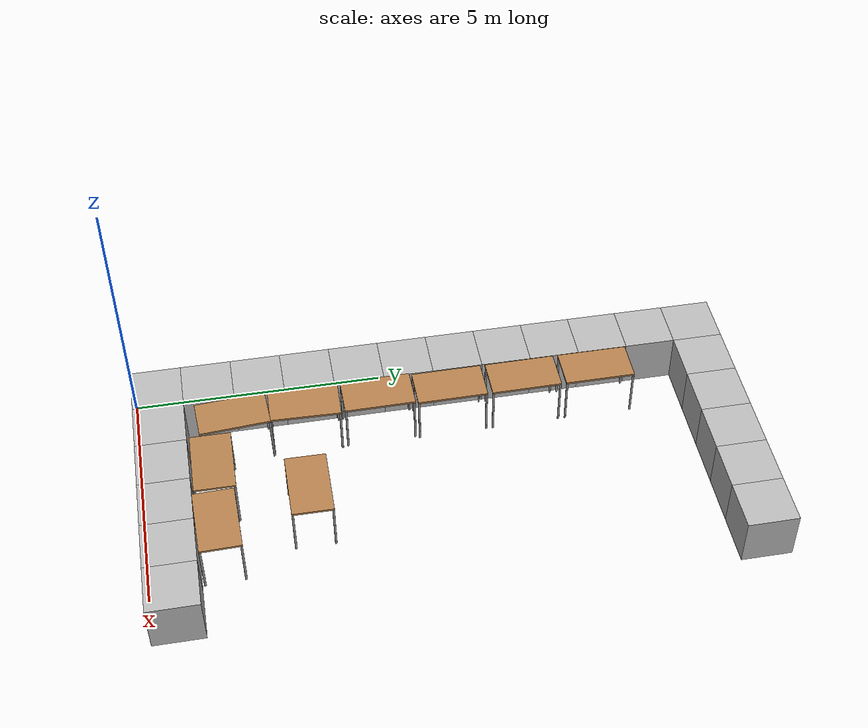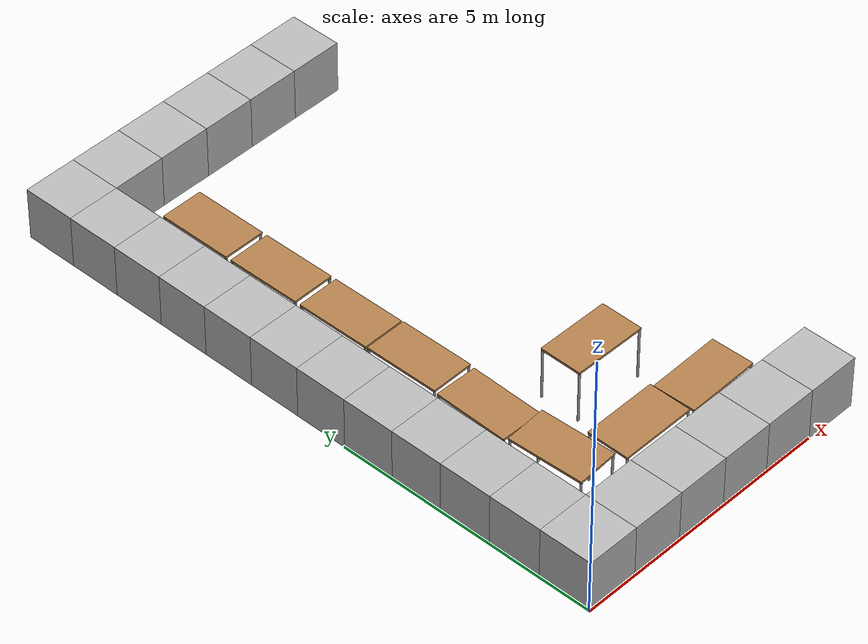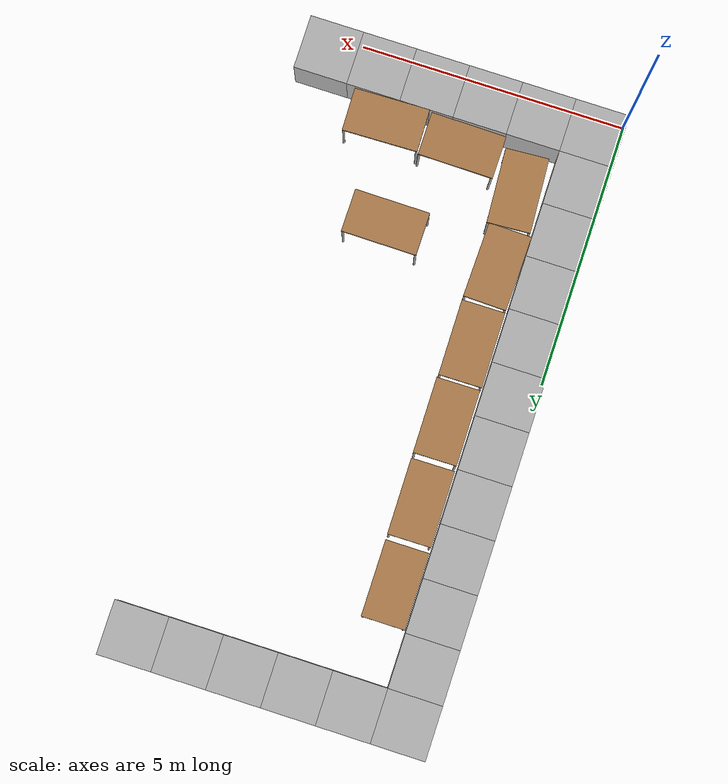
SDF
<sdf version="1.6">
 <world name="default">
  <model name="box_0_0">
   <pose>0.5 0.5 0.5 0 -0 0</pose>
   <static>1</static>
   <link name="link">
    <collision name="collision"><geometry><box><size>1 1 1</size></box></geometry></collision>
    <visual name="visual"><geometry><box><size>1 1 1</size></box></geometry></visual>
   </link>
  </model>
  <model name="box_0_1">
   <pose>0.5 1.5 0.5 0 -0 0</pose>
   <static>1</static>
   <link name="link">
    <collision name="collision"><geometry><box><size>1 1 1</size></box></geometry></collision>
    <visual name="visual"><geometry><box><size>1 1 1</size></box></geometry></visual>
   </link>
  </model>
  <model name="box_0_2">
   <pose>0.5 2.5 0.5 0 -0 0</pose>
   <static>1</static>
   <link name="link">
    <collision name="collision"><geometry><box><size>1 1 1</size></box></geometry></collision>
    <visual name="visual"><geometry><box><size>1 1 1</size></box></geometry></visual>
   </link>
  </model>
  <model name="box_0_3">
   <pose>0.5 3.5 0.5 0 -0 0</pose>
   <static>1</static>
   <link name="link">
    <collision name="collision"><geometry><box><size>1 1 1</size></box></geometry></collision>
    <visual name="visual"><geometry><box><size>1 1 1</size></box></geometry></visual>
   </link>
  </model>
  <model name="box_0_4">
   <pose>0.5 4.5 0.5 0 -0 0</pose>
   <static>1</static>
   <link name="link">
    <collision name="collision"><geometry><box><size>1 1 1</size></box></geometry></collision>
    <visual name="visual"><geometry><box><size>1 1 1</size></box></geometry></visual>
   </link>
  </model>
  <model name="box_0_5">
   <pose>0.5 5.5 0.5 0 -0 0</pose>
   <static>1</static>
   <link name="link">
    <collision name="collision"><geometry><box><size>1 1 1</size></box></geometry></collision>
    <visual name="visual"><geometry><box><size>1 1 1</size></box></geometry></visual>
   </link>
  </model>
  <model name="box_0_6">
   <pose>0.5 6.5 0.5 0 -0 0</pose>
   <static>1</static>
   <link name="link">
    <collision name="collision"><geometry><box><size>1 1 1</size></box></geometry></collision>
    <visual name="visual"><geometry><box><size>1 1 1</size></box></geometry></visual>
   </link>
  </model>
  <model name="box_0_7">
   <pose>0.5 7.5 0.5 0 -0 0</pose>
   <static>1</static>
   <link name="link">
    <collision name="collision"><geometry><box><size>1 1 1</size></box></geometry></collision>
    <visual name="visual"><geometry><box><size>1 1 1</size></box></geometry></visual>
   </link>
  </model>
  <model name="box_0_8">
   <pose>0.5 8.5 0.5 0 -0 0</pose>
   <static>1</static>
   <link name="link">
    <collision name="collision"><geometry><box><size>1 1 1</size></box></geometry></collision>
    <visual name="visual"><geometry><box><size>1 1 1</size></box></geometry></visual>
   </link>
  </model>
  <model name="box_0_9">
   <pose>0.5 9.5 0.5 0 -0 0</pose>
   <static>1</static>
   <link name="link">
    <collision name="collision"><geometry><box><size>1 1 1</size></box></geometry></collision>
    <visual name="visual"><geometry><box><size>1 1 1</size></box></geometry></visual>
   </link>
  </model>
  <model name="box_0_10">
   <pose>0.5 10.5 0.5 0 -0 0</pose>
   <static>1</static>
   <link name="link">
    <collision name="collision"><geometry><box><size>1 1 1</size></box></geometry></collision>
    <visual name="visual"><geometry><box><size>1 1 1</size></box></geometry></visual>
   </link>
  </model>
  <model name="box_0_11">
   <pose>0.5 11.5 0.5 0 -0 0</pose>
   <static>1</static>
   <link name="link">
    <collision name="collision"><geometry><box><size>1 1 1</size></box></geometry></collision>
    <visual name="visual"><geometry><box><size>1 1 1</size></box></geometry></visual>
   </link>
  </model>
  <model name="box_1_0">
   <pose>1.5 0.5 0.5 0 -0 0</pose>
   <static>1</static>
   <link name="link">
    <collision name="collision"><geometry><box><size>1 1 1</size></box></geometry></collision>
    <visual name="visual"><geometry><box><size>1 1 1</size></box></geometry></visual>
   </link>
  </model>
  <model name="box_1_11">
   <pose>1.5 11.5 0.5 0 -0 0</pose>
   <static>1</static>
   <link name="link">
    <collision name="collision"><geometry><box><size>1 1 1</size></box></geometry></collision>
    <visual name="visual"><geometry><box><size>1 1 1</size></box></geometry></visual>
   </link>
  </model>
  <model name="box_2_0">
   <pose>2.5 0.5 0.5 0 -0 0</pose>
   <static>1</static>
   <link name="link">
    <collision name="collision"><geometry><box><size>1 1 1</size></box></geometry></collision>
    <visual name="visual"><geometry><box><size>1 1 1</size></box></geometry></visual>
   </link>
  </model>
  <model name="box_2_11">
   <pose>2.5 11.5 0.5 0 -0 0</pose>
   <static>1</static>
   <link name="link">
    <collision name="collision"><geometry><box><size>1 1 1</size></box></geometry></collision>
    <visual name="visual"><geometry><box><size>1 1 1</size></box></geometry></visual>
   </link>
  </model>
  <model name="box_3_0">
   <pose>3.5 0.5 0.5 0 -0 0</pose>
   <static>1</static>
   <link name="link">
    <collision name="collision"><geometry><box><size>1 1 1</size></box></geometry></collision>
    <visual name="visual"><geometry><box><size>1 1 1</size></box></geometry></visual>
   </link>
  </model>
  <model name="box_3_11">
   <pose>3.5 11.5 0.5 0 -0 0</pose>
   <static>1</static>
   <link name="link">
    <collision name="collision"><geometry><box><size>1 1 1</size></box></geometry></collision>
    <visual name="visual"><geometry><box><size>1 1 1</size></box></geometry></visual>
   </link>
  </model>
  <model name="box_4_0">
   <pose>4.5 0.5 0.5 0 -0 0</pose>
   <static>1</static>
   <link name="link">
    <collision name="collision"><geometry><box><size>1 1 1</size></box></geometry></collision>
    <visual name="visual"><geometry><box><size>1 1 1</size></box></geometry></visual>
   </link>
  </model>
  <model name="box_4_11">
   <pose>4.5 11.5 0.5 0 -0 0</pose>
   <static>1</static>
   <link name="link">
    <collision name="collision"><geometry><box><size>1 1 1</size></box></geometry></collision>
    <visual name="visual"><geometry><box><size>1 1 1</size></box></geometry></visual>
   </link>
  </model>
  <model name="box_5_0">
   <pose>5.5 0.5 0.5 0 -0 0</pose>
   <static>1</static>
   <link name="link">
    <collision name="collision"><geometry><box><size>1 1 1</size></box></geometry></collision>
    <visual name="visual"><geometry><box><size>1 1 1</size></box></geometry></visual>
   </link>
  </model>
  <model name="box_5_11">
   <pose>5.5 11.5 0.5 0 -0 0</pose>
   <static>1</static>
   <link name="link">
    <collision name="collision"><geometry><box><size>1 1 1</size></box></geometry></collision>
    <visual name="visual"><geometry><box><size>1 1 1</size></box></geometry></visual>
   </link>
  </model>
  <model name="table_0_clone_clone_1">
   <static>0</static>
   <link name="link">
    <collision name="surface">
     <pose>0 0 1 0 -0 0</pose>
     <geometry><box><size>1.5 0.8 0.03</size></box></geometry>
     <surface><friction><ode><mu>0.6</mu><mu2>0.6</mu2></ode></friction></surface>
    </collision>
    <visual name="visual1">
     <pose>0 0 1 0 -0 0</pose>
     <geometry><box><size>1.4 0.8 0.04</size></box></geometry>
     <material>
      <script><uri>file://media/materials/scripts/gazebo.material</uri><name>Gazebo/Wood</name></script>
     </material>
    </visual>
    <collision name="front_left_leg">
     <pose>0.68 0.38 0.5 0 -0 0</pose>
     <geometry><cylinder><radius>0.02</radius><length>1</length></cylinder></geometry>
    </collision>
    <visual name="front_left_leg">
     <pose>0.68 0.38 0.5 0 -0 0</pose>
     <geometry><cylinder><radius>0.02</radius><length>1</length></cylinder></geometry>
     <material>
      <script><uri>file://media/materials/scripts/gazebo.material</uri><name>Gazebo/Grey</name></script>
     </material>
    </visual>
    <collision name="front_right_leg">
     <pose>0.68 -0.38 0.5 0 -0 0</pose>
     <geometry><cylinder><radius>0.02</radius><length>1</length></cylinder></geometry>
    </collision>
    <visual name="front_right_leg">
     <pose>0.68 -0.38 0.5 0 -0 0</pose>
     <geometry><cylinder><radius>0.02</radius><length>1</length></cylinder></geometry>
     <material>
      <script><uri>file://media/materials/scripts/gazebo.material</uri><name>Gazebo/Grey</name></script>
     </material>
    </visual>
    <collision name="back_right_leg">
     <pose>-0.68 -0.38 0.5 0 -0 0</pose>
     <geometry><cylinder><radius>0.02</radius><length>1</length></cylinder></geometry>
    </collision>
    <visual name="back_right_leg">
     <pose>-0.68 -0.38 0.5 0 -0 0</pose>
     <geometry><cylinder><radius>0.02</radius><length>1</length></cylinder></geometry>
     <material>
      <script><uri>file://media/materials/scripts/gazebo.material</uri><name>Gazebo/Grey</name></script>
     </material>
    </visual>
    <collision name="back_left_leg">
     <pose>-0.68 0.38 0.5 0 -0 0</pose>
     <geometry><cylinder><radius>0.02</radius><length>1</length></cylinder></geometry>
    </collision>
    <visual name="back_left_leg">
     <pose>-0.68 0.38 0.5 0 -0 0</pose>
     <geometry><cylinder><radius>0.02</radius><length>1</length></cylinder></geometry>
     <material>
      <script><uri>file://media/materials/scripts/gazebo.material</uri><name>Gazebo/Grey</name></script>
     </material>
    </visual>
    <inertial>
     <inertia><ixx>1</ixx><ixy>0</ixy><ixz>0</ixz><iyy>1</iyy><iyz>0</iyz><izz>1</izz></inertia>
     <mass>1</mass>
    </inertial>
   </link>
   <pose>1.49017 1.94716 0.015802 0.00183 0.021585 -1.51207</pose>
  </model>
  <model name="table_0_clone_clone_2">
   <static>0</static>
   <link name="link">
    <collision name="surface">
     <pose>0 0 1 0 -0 0</pose>
     <geometry><box><size>1.5 0.8 0.03</size></box></geometry>
     <surface><friction><ode><mu>0.6</mu><mu2>0.6</mu2></ode></friction></surface>
    </collision>
    <visual name="visual1">
     <pose>0 0 1 0 -0 0</pose>
     <geometry><box><size>1.4 0.8 0.04</size></box></geometry>
     <material>
      <script><uri>file://media/materials/scripts/gazebo.material</uri><name>Gazebo/Wood</name></script>
     </material>
    </visual>
    <collision name="front_left_leg">
     <pose>0.68 0.38 0.5 0 -0 0</pose>
     <geometry><cylinder><radius>0.02</radius><length>1</length></cylinder></geometry>
    </collision>
    <visual name="front_left_leg">
     <pose>0.68 0.38 0.5 0 -0 0</pose>
     <geometry><cylinder><radius>0.02</radius><length>1</length></cylinder></geometry>
     <material>
      <script><uri>file://media/materials/scripts/gazebo.material</uri><name>Gazebo/Grey</name></script>
     </material>
    </visual>
    <collision name="front_right_leg">
     <pose>0.68 -0.38 0.5 0 -0 0</pose>
     <geometry><cylinder><radius>0.02</radius><length>1</length></cylinder></geometry>
    </collision>
    <visual name="front_right_leg">
     <pose>0.68 -0.38 0.5 0 -0 0</pose>
     <geometry><cylinder><radius>0.02</radius><length>1</length></cylinder></geometry>
     <material>
      <script><uri>file://media/materials/scripts/gazebo.material</uri><name>Gazebo/Grey</name></script>
     </material>
    </visual>
    <collision name="back_right_leg">
     <pose>-0.68 -0.38 0.5 0 -0 0</pose>
     <geometry><cylinder><radius>0.02</radius><length>1</length></cylinder></geometry>
    </collision>
    <visual name="back_right_leg">
     <pose>-0.68 -0.38 0.5 0 -0 0</pose>
     <geometry><cylinder><radius>0.02</radius><length>1</length></cylinder></geometry>
     <material>
      <script><uri>file://media/materials/scripts/gazebo.material</uri><name>Gazebo/Grey</name></script>
     </material>
    </visual>
    <collision name="back_left_leg">
     <pose>-0.68 0.38 0.5 0 -0 0</pose>
     <geometry><cylinder><radius>0.02</radius><length>1</length></cylinder></geometry>
    </collision>
    <visual name="back_left_leg">
     <pose>-0.68 0.38 0.5 0 -0 0</pose>
     <geometry><cylinder><radius>0.02</radius><length>1</length></cylinder></geometry>
     <material>
      <script><uri>file://media/materials/scripts/gazebo.material</uri><name>Gazebo/Grey</name></script>
     </material>
    </visual>
    <inertial>
     <inertia><ixx>1</ixx><ixy>0</ixy><ixz>0</ixz><iyy>1</iyy><iyz>0</iyz><izz>1</izz></inertia>
     <mass>1</mass>
    </inertial>
   </link>
   <pose>1.42344 3.34358 0 0 0 -1.59789</pose>
  </model>
  <model name="table_0_clone_clone_2_clone">
   <static>0</static>
   <link name="link">
    <collision name="surface">
     <pose>0 0 1 0 -0 0</pose>
     <geometry><box><size>1.5 0.8 0.03</size></box></geometry>
     <surface><friction><ode><mu>0.6</mu><mu2>0.6</mu2></ode></friction></surface>
    </collision>
    <visual name="visual1">
     <pose>0 0 1 0 -0 0</pose>
     <geometry><box><size>1.4 0.8 0.04</size></box></geometry>
     <material>
      <script><uri>file://media/materials/scripts/gazebo.material</uri><name>Gazebo/Wood</name></script>
     </material>
    </visual>
    <collision name="front_left_leg">
     <pose>0.68 0.38 0.5 0 -0 0</pose>
     <geometry><cylinder><radius>0.02</radius><length>1</length></cylinder></geometry>
    </collision>
    <visual name="front_left_leg">
     <pose>0.68 0.38 0.5 0 -0 0</pose>
     <geometry><cylinder><radius>0.02</radius><length>1</length></cylinder></geometry>
     <material>
      <script><uri>file://media/materials/scripts/gazebo.material</uri><name>Gazebo/Grey</name></script>
     </material>
    </visual>
    <collision name="front_right_leg">
     <pose>0.68 -0.38 0.5 0 -0 0</pose>
     <geometry><cylinder><radius>0.02</radius><length>1</length></cylinder></geometry>
    </collision>
    <visual name="front_right_leg">
     <pose>0.68 -0.38 0.5 0 -0 0</pose>
     <geometry><cylinder><radius>0.02</radius><length>1</length></cylinder></geometry>
     <material>
      <script><uri>file://media/materials/scripts/gazebo.material</uri><name>Gazebo/Grey</name></script>
     </material>
    </visual>
    <collision name="back_right_leg">
     <pose>-0.68 -0.38 0.5 0 -0 0</pose>
     <geometry><cylinder><radius>0.02</radius><length>1</length></cylinder></geometry>
    </collision>
    <visual name="back_right_leg">
     <pose>-0.68 -0.38 0.5 0 -0 0</pose>
     <geometry><cylinder><radius>0.02</radius><length>1</length></cylinder></geometry>
     <material>
      <script><uri>file://media/materials/scripts/gazebo.material</uri><name>Gazebo/Grey</name></script>
     </material>
    </visual>
    <collision name="back_left_leg">
     <pose>-0.68 0.38 0.5 0 -0 0</pose>
     <geometry><cylinder><radius>0.02</radius><length>1</length></cylinder></geometry>
    </collision>
    <visual name="back_left_leg">
     <pose>-0.68 0.38 0.5 0 -0 0</pose>
     <geometry><cylinder><radius>0.02</radius><length>1</length></cylinder></geometry>
     <material>
      <script><uri>file://media/materials/scripts/gazebo.material</uri><name>Gazebo/Grey</name></script>
     </material>
    </visual>
    <inertial>
     <inertia><ixx>1</ixx><ixy>0</ixy><ixz>0</ixz><iyy>1</iyy><iyz>0</iyz><izz>1</izz></inertia>
     <mass>1</mass>
    </inertial>
   </link>
   <pose>1.43814 4.80631 0.029991 -5e-06 3e-06 -1.56369</pose>
  </model>
  <model name="table_0_clone_clone_2_clone_0">
   <static>0</static>
   <link name="link">
    <collision name="surface">
     <pose>0 0 1 0 -0 0</pose>
     <geometry><box><size>1.5 0.8 0.03</size></box></geometry>
     <surface><friction><ode><mu>0.6</mu><mu2>0.6</mu2></ode></friction></surface>
    </collision>
    <visual name="visual1">
     <pose>0 0 1 0 -0 0</pose>
     <geometry><box><size>1.4 0.8 0.04</size></box></geometry>
     <material>
      <script><uri>file://media/materials/scripts/gazebo.material</uri><name>Gazebo/Wood</name></script>
     </material>
    </visual>
    <collision name="front_left_leg">
     <pose>0.68 0.38 0.5 0 -0 0</pose>
     <geometry><cylinder><radius>0.02</radius><length>1</length></cylinder></geometry>
    </collision>
    <visual name="front_left_leg">
     <pose>0.68 0.38 0.5 0 -0 0</pose>
     <geometry><cylinder><radius>0.02</radius><length>1</length></cylinder></geometry>
     <material>
      <script><uri>file://media/materials/scripts/gazebo.material</uri><name>Gazebo/Grey</name></script>
     </material>
    </visual>
    <collision name="front_right_leg">
     <pose>0.68 -0.38 0.5 0 -0 0</pose>
     <geometry><cylinder><radius>0.02</radius><length>1</length></cylinder></geometry>
    </collision>
    <visual name="front_right_leg">
     <pose>0.68 -0.38 0.5 0 -0 0</pose>
     <geometry><cylinder><radius>0.02</radius><length>1</length></cylinder></geometry>
     <material>
      <script><uri>file://media/materials/scripts/gazebo.material</uri><name>Gazebo/Grey</name></script>
     </material>
    </visual>
    <collision name="back_right_leg">
     <pose>-0.68 -0.38 0.5 0 -0 0</pose>
     <geometry><cylinder><radius>0.02</radius><length>1</length></cylinder></geometry>
    </collision>
    <visual name="back_right_leg">
     <pose>-0.68 -0.38 0.5 0 -0 0</pose>
     <geometry><cylinder><radius>0.02</radius><length>1</length></cylinder></geometry>
     <material>
      <script><uri>file://media/materials/scripts/gazebo.material</uri><name>Gazebo/Grey</name></script>
     </material>
    </visual>
    <collision name="back_left_leg">
     <pose>-0.68 0.38 0.5 0 -0 0</pose>
     <geometry><cylinder><radius>0.02</radius><length>1</length></cylinder></geometry>
    </collision>
    <visual name="back_left_leg">
     <pose>-0.68 0.38 0.5 0 -0 0</pose>
     <geometry><cylinder><radius>0.02</radius><length>1</length></cylinder></geometry>
     <material>
      <script><uri>file://media/materials/scripts/gazebo.material</uri><name>Gazebo/Grey</name></script>
     </material>
    </visual>
    <inertial>
     <inertia><ixx>1</ixx><ixy>0</ixy><ixz>0</ixz><iyy>1</iyy><iyz>0</iyz><izz>1</izz></inertia>
     <mass>1</mass>
    </inertial>
   </link>
   <pose>1.44262 6.25638 -3e-06 0 4e-06 -1.56367</pose>
  </model>
  <model name="table_0_clone_clone_2_clone_1">
   <static>0</static>
   <link name="link">
    <collision name="surface">
     <pose>0 0 1 0 -0 0</pose>
     <geometry><box><size>1.5 0.8 0.03</size></box></geometry>
     <surface><friction><ode><mu>0.6</mu><mu2>0.6</mu2></ode></friction></surface>
    </collision>
    <visual name="visual1">
     <pose>0 0 1 0 -0 0</pose>
     <geometry><box><size>1.4 0.8 0.04</size></box></geometry>
     <material>
      <script><uri>file://media/materials/scripts/gazebo.material</uri><name>Gazebo/Wood</name></script>
     </material>
    </visual>
    <collision name="front_left_leg">
     <pose>0.68 0.38 0.5 0 -0 0</pose>
     <geometry><cylinder><radius>0.02</radius><length>1</length></cylinder></geometry>
    </collision>
    <visual name="front_left_leg">
     <pose>0.68 0.38 0.5 0 -0 0</pose>
     <geometry><cylinder><radius>0.02</radius><length>1</length></cylinder></geometry>
     <material>
      <script><uri>file://media/materials/scripts/gazebo.material</uri><name>Gazebo/Grey</name></script>
     </material>
    </visual>
    <collision name="front_right_leg">
     <pose>0.68 -0.38 0.5 0 -0 0</pose>
     <geometry><cylinder><radius>0.02</radius><length>1</length></cylinder></geometry>
    </collision>
    <visual name="front_right_leg">
     <pose>0.68 -0.38 0.5 0 -0 0</pose>
     <geometry><cylinder><radius>0.02</radius><length>1</length></cylinder></geometry>
     <material>
      <script><uri>file://media/materials/scripts/gazebo.material</uri><name>Gazebo/Grey</name></script>
     </material>
    </visual>
    <collision name="back_right_leg">
     <pose>-0.68 -0.38 0.5 0 -0 0</pose>
     <geometry><cylinder><radius>0.02</radius><length>1</length></cylinder></geometry>
    </collision>
    <visual name="back_right_leg">
     <pose>-0.68 -0.38 0.5 0 -0 0</pose>
     <geometry><cylinder><radius>0.02</radius><length>1</length></cylinder></geometry>
     <material>
      <script><uri>file://media/materials/scripts/gazebo.material</uri><name>Gazebo/Grey</name></script>
     </material>
    </visual>
    <collision name="back_left_leg">
     <pose>-0.68 0.38 0.5 0 -0 0</pose>
     <geometry><cylinder><radius>0.02</radius><length>1</length></cylinder></geometry>
    </collision>
    <visual name="back_left_leg">
     <pose>-0.68 0.38 0.5 0 -0 0</pose>
     <geometry><cylinder><radius>0.02</radius><length>1</length></cylinder></geometry>
     <material>
      <script><uri>file://media/materials/scripts/gazebo.material</uri><name>Gazebo/Grey</name></script>
     </material>
    </visual>
    <inertial>
     <inertia><ixx>1</ixx><ixy>0</ixy><ixz>0</ixz><iyy>1</iyy><iyz>0</iyz><izz>1</izz></inertia>
     <mass>1</mass>
    </inertial>
   </link>
   <pose>1.43369 7.75636 -8e-06 -2e-06 -1e-06 -1.56367</pose>
  </model>
  <model name="table_0_clone_clone_2_clone_1_clone">
   <static>0</static>
   <link name="link">
    <collision name="surface">
     <pose>0 0 1 0 -0 0</pose>
     <geometry><box><size>1.5 0.8 0.03</size></box></geometry>
     <surface><friction><ode><mu>0.6</mu><mu2>0.6</mu2></ode></friction></surface>
    </collision>
    <visual name="visual1">
     <pose>0 0 1 0 -0 0</pose>
     <geometry><box><size>1.4 0.8 0.04</size></box></geometry>
     <material>
      <script><uri>file://media/materials/scripts/gazebo.material</uri><name>Gazebo/Wood</name></script>
     </material>
    </visual>
    <collision name="front_left_leg">
     <pose>0.68 0.38 0.5 0 -0 0</pose>
     <geometry><cylinder><radius>0.02</radius><length>1</length></cylinder></geometry>
    </collision>
    <visual name="front_left_leg">
     <pose>0.68 0.38 0.5 0 -0 0</pose>
     <geometry><cylinder><radius>0.02</radius><length>1</length></cylinder></geometry>
     <material>
      <script><uri>file://media/materials/scripts/gazebo.material</uri><name>Gazebo/Grey</name></script>
     </material>
    </visual>
    <collision name="front_right_leg">
     <pose>0.68 -0.38 0.5 0 -0 0</pose>
     <geometry><cylinder><radius>0.02</radius><length>1</length></cylinder></geometry>
    </collision>
    <visual name="front_right_leg">
     <pose>0.68 -0.38 0.5 0 -0 0</pose>
     <geometry><cylinder><radius>0.02</radius><length>1</length></cylinder></geometry>
     <material>
      <script><uri>file://media/materials/scripts/gazebo.material</uri><name>Gazebo/Grey</name></script>
     </material>
    </visual>
    <collision name="back_right_leg">
     <pose>-0.68 -0.38 0.5 0 -0 0</pose>
     <geometry><cylinder><radius>0.02</radius><length>1</length></cylinder></geometry>
    </collision>
    <visual name="back_right_leg">
     <pose>-0.68 -0.38 0.5 0 -0 0</pose>
     <geometry><cylinder><radius>0.02</radius><length>1</length></cylinder></geometry>
     <material>
      <script><uri>file://media/materials/scripts/gazebo.material</uri><name>Gazebo/Grey</name></script>
     </material>
    </visual>
    <collision name="back_left_leg">
     <pose>-0.68 0.38 0.5 0 -0 0</pose>
     <geometry><cylinder><radius>0.02</radius><length>1</length></cylinder></geometry>
    </collision>
    <visual name="back_left_leg">
     <pose>-0.68 0.38 0.5 0 -0 0</pose>
     <geometry><cylinder><radius>0.02</radius><length>1</length></cylinder></geometry>
     <material>
      <script><uri>file://media/materials/scripts/gazebo.material</uri><name>Gazebo/Grey</name></script>
     </material>
    </visual>
    <inertial>
     <inertia><ixx>1</ixx><ixy>0</ixy><ixz>0</ixz><iyy>1</iyy><iyz>0</iyz><izz>1</izz></inertia>
     <mass>1</mass>
    </inertial>
   </link>
   <pose>1.42708 9.25865 -4e-06 1e-06 -0 -1.56944</pose>
  </model>
  <model name="table_clone_0_clone">
   <static>0</static>
   <link name="link">
    <collision name="surface">
     <pose>0 0 1 0 -0 0</pose>
     <geometry><box><size>1.5 0.8 0.03</size></box></geometry>
     <surface><friction><ode><mu>0.6</mu><mu2>0.6</mu2></ode></friction></surface>
    </collision>
    <visual name="visual1">
     <pose>0 0 1 0 -0 0</pose>
     <geometry><box><size>1.4 0.8 0.04</size></box></geometry>
     <material>
      <script><uri>file://media/materials/scripts/gazebo.material</uri><name>Gazebo/Wood</name></script>
     </material>
    </visual>
    <collision name="front_left_leg">
     <pose>0.68 0.38 0.5 0 -0 0</pose>
     <geometry><cylinder><radius>0.02</radius><length>1</length></cylinder></geometry>
    </collision>
    <visual name="front_left_leg">
     <pose>0.68 0.38 0.5 0 -0 0</pose>
     <geometry><cylinder><radius>0.02</radius><length>1</length></cylinder></geometry>
     <material>
      <script><uri>file://media/materials/scripts/gazebo.material</uri><name>Gazebo/Grey</name></script>
     </material>
    </visual>
    <collision name="front_right_leg">
     <pose>0.68 -0.38 0.5 0 -0 0</pose>
     <geometry><cylinder><radius>0.02</radius><length>1</length></cylinder></geometry>
    </collision>
    <visual name="front_right_leg">
     <pose>0.68 -0.38 0.5 0 -0 0</pose>
     <geometry><cylinder><radius>0.02</radius><length>1</length></cylinder></geometry>
     <material>
      <script><uri>file://media/materials/scripts/gazebo.material</uri><name>Gazebo/Grey</name></script>
     </material>
    </visual>
    <collision name="back_right_leg">
     <pose>-0.68 -0.38 0.5 0 -0 0</pose>
     <geometry><cylinder><radius>0.02</radius><length>1</length></cylinder></geometry>
    </collision>
    <visual name="back_right_leg">
     <pose>-0.68 -0.38 0.5 0 -0 0</pose>
     <geometry><cylinder><radius>0.02</radius><length>1</length></cylinder></geometry>
     <material>
      <script><uri>file://media/materials/scripts/gazebo.material</uri><name>Gazebo/Grey</name></script>
     </material>
    </visual>
    <collision name="back_left_leg">
     <pose>-0.68 0.38 0.5 0 -0 0</pose>
     <geometry><cylinder><radius>0.02</radius><length>1</length></cylinder></geometry>
    </collision>
    <visual name="back_left_leg">
     <pose>-0.68 0.38 0.5 0 -0 0</pose>
     <geometry><cylinder><radius>0.02</radius><length>1</length></cylinder></geometry>
     <material>
      <script><uri>file://media/materials/scripts/gazebo.material</uri><name>Gazebo/Grey</name></script>
     </material>
    </visual>
    <inertial>
     <inertia><ixx>1</ixx><ixy>0</ixy><ixz>0</ixz><iyy>1</iyy><iyz>0</iyz><izz>1</izz></inertia>
     <mass>1</mass>
    </inertial>
   </link>
   <pose>3.55881 3.19191 -8e-06 -1e-06 1e-06 -0.007666</pose>
  </model>
  <model name="table_clone_0_clone_clone">
   <static>0</static>
   <link name="link">
    <collision name="surface">
     <pose>0 0 1 0 -0 0</pose>
     <geometry><box><size>1.5 0.8 0.03</size></box></geometry>
     <surface><friction><ode><mu>0.6</mu><mu2>0.6</mu2></ode></friction></surface>
    </collision>
    <visual name="visual1">
     <pose>0 0 1 0 -0 0</pose>
     <geometry><box><size>1.4 0.8 0.04</size></box></geometry>
     <material>
      <script><uri>file://media/materials/scripts/gazebo.material</uri><name>Gazebo/Wood</name></script>
     </material>
    </visual>
    <collision name="front_left_leg">
     <pose>0.68 0.38 0.5 0 -0 0</pose>
     <geometry><cylinder><radius>0.02</radius><length>1</length></cylinder></geometry>
    </collision>
    <visual name="front_left_leg">
     <pose>0.68 0.38 0.5 0 -0 0</pose>
     <geometry><cylinder><radius>0.02</radius><length>1</length></cylinder></geometry>
     <material>
      <script><uri>file://media/materials/scripts/gazebo.material</uri><name>Gazebo/Grey</name></script>
     </material>
    </visual>
    <collision name="front_right_leg">
     <pose>0.68 -0.38 0.5 0 -0 0</pose>
     <geometry><cylinder><radius>0.02</radius><length>1</length></cylinder></geometry>
    </collision>
    <visual name="front_right_leg">
     <pose>0.68 -0.38 0.5 0 -0 0</pose>
     <geometry><cylinder><radius>0.02</radius><length>1</length></cylinder></geometry>
     <material>
      <script><uri>file://media/materials/scripts/gazebo.material</uri><name>Gazebo/Grey</name></script>
     </material>
    </visual>
    <collision name="back_right_leg">
     <pose>-0.68 -0.38 0.5 0 -0 0</pose>
     <geometry><cylinder><radius>0.02</radius><length>1</length></cylinder></geometry>
    </collision>
    <visual name="back_right_leg">
     <pose>-0.68 -0.38 0.5 0 -0 0</pose>
     <geometry><cylinder><radius>0.02</radius><length>1</length></cylinder></geometry>
     <material>
      <script><uri>file://media/materials/scripts/gazebo.material</uri><name>Gazebo/Grey</name></script>
     </material>
    </visual>
    <collision name="back_left_leg">
     <pose>-0.68 0.38 0.5 0 -0 0</pose>
     <geometry><cylinder><radius>0.02</radius><length>1</length></cylinder></geometry>
    </collision>
    <visual name="back_left_leg">
     <pose>-0.68 0.38 0.5 0 -0 0</pose>
     <geometry><cylinder><radius>0.02</radius><length>1</length></cylinder></geometry>
     <material>
      <script><uri>file://media/materials/scripts/gazebo.material</uri><name>Gazebo/Grey</name></script>
     </material>
    </visual>
    <inertial>
     <inertia><ixx>1</ixx><ixy>0</ixy><ixz>0</ixz><iyy>1</iyy><iyz>0</iyz><izz>1</izz></inertia>
     <mass>1</mass>
    </inertial>
   </link>
   <pose>2.70683 1.44778 0.015362 2.3e-05 -0.021935 -0.00726</pose>
  </model>
  <model name="table_clone_0_clone_clone_0">
   <static>0</static>
   <link name="link">
    <collision name="surface">
     <pose>0 0 1 0 -0 0</pose>
     <geometry><box><size>1.5 0.8 0.03</size></box></geometry>
     <surface><friction><ode><mu>0.6</mu><mu2>0.6</mu2></ode></friction></surface>
    </collision>
    <visual name="visual1">
     <pose>0 0 1 0 -0 0</pose>
     <geometry><box><size>1.4 0.8 0.04</size></box></geometry>
     <material>
      <script><uri>file://media/materials/scripts/gazebo.material</uri><name>Gazebo/Wood</name></script>
     </material>
    </visual>
    <collision name="front_left_leg">
     <pose>0.68 0.38 0.5 0 -0 0</pose>
     <geometry><cylinder><radius>0.02</radius><length>1</length></cylinder></geometry>
    </collision>
    <visual name="front_left_leg">
     <pose>0.68 0.38 0.5 0 -0 0</pose>
     <geometry><cylinder><radius>0.02</radius><length>1</length></cylinder></geometry>
     <material>
      <script><uri>file://media/materials/scripts/gazebo.material</uri><name>Gazebo/Grey</name></script>
     </material>
    </visual>
    <collision name="front_right_leg">
     <pose>0.68 -0.38 0.5 0 -0 0</pose>
     <geometry><cylinder><radius>0.02</radius><length>1</length></cylinder></geometry>
    </collision>
    <visual name="front_right_leg">
     <pose>0.68 -0.38 0.5 0 -0 0</pose>
     <geometry><cylinder><radius>0.02</radius><length>1</length></cylinder></geometry>
     <material>
      <script><uri>file://media/materials/scripts/gazebo.material</uri><name>Gazebo/Grey</name></script>
     </material>
    </visual>
    <collision name="back_right_leg">
     <pose>-0.68 -0.38 0.5 0 -0 0</pose>
     <geometry><cylinder><radius>0.02</radius><length>1</length></cylinder></geometry>
    </collision>
    <visual name="back_right_leg">
     <pose>-0.68 -0.38 0.5 0 -0 0</pose>
     <geometry><cylinder><radius>0.02</radius><length>1</length></cylinder></geometry>
     <material>
      <script><uri>file://media/materials/scripts/gazebo.material</uri><name>Gazebo/Grey</name></script>
     </material>
    </visual>
    <collision name="back_left_leg">
     <pose>-0.68 0.38 0.5 0 -0 0</pose>
     <geometry><cylinder><radius>0.02</radius><length>1</length></cylinder></geometry>
    </collision>
    <visual name="back_left_leg">
     <pose>-0.68 0.38 0.5 0 -0 0</pose>
     <geometry><cylinder><radius>0.02</radius><length>1</length></cylinder></geometry>
     <material>
      <script><uri>file://media/materials/scripts/gazebo.material</uri><name>Gazebo/Grey</name></script>
     </material>
    </visual>
    <inertial>
     <inertia><ixx>1</ixx><ixy>0</ixy><ixz>0</ixz><iyy>1</iyy><iyz>0</iyz><izz>1</izz></inertia>
     <mass>1</mass>
    </inertial>
   </link>
   <pose>4.12476 1.4184 0 0 -0 0.023649</pose>
  </model>
 </world>
</sdf>
